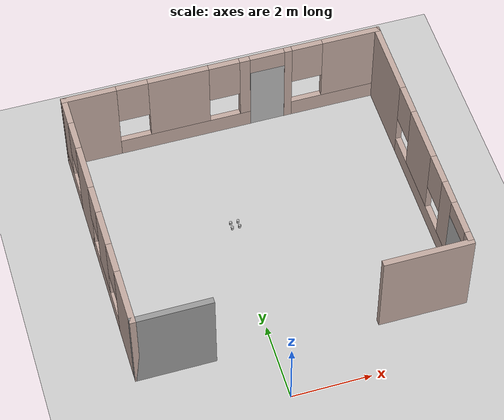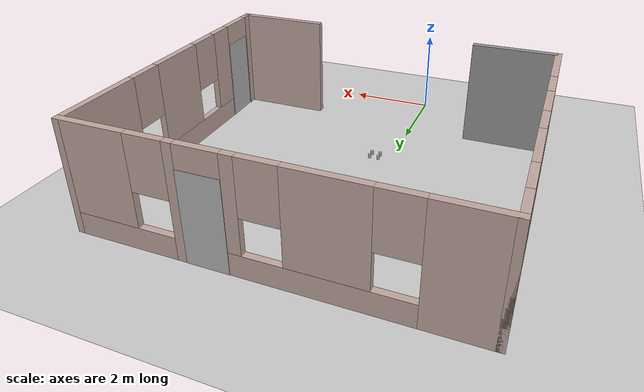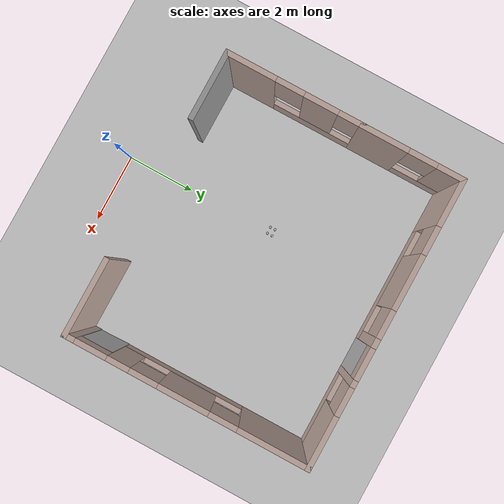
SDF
<sdf version="1.6">
 <world name="default">
  <light name="sun" type="directional">
   <pose>0 0 10 0 -0 0</pose>
   <diffuse>0.8 0.8 0.8 1</diffuse>
   <specular>0.2 0.2 0.2 1</specular>
   <attenuation>
    <range>1000</range>
    <constant>0.9</constant>
    <linear>0.01</linear>
    <quadratic>0.001</quadratic>
   </attenuation>
   <direction>-0.5 0.1 -0.9</direction>
  </light>
  <model name="ground_plane">
   <static>1</static>
   <link name="link">
    <collision name="collision">
     <geometry><plane><normal>0 0 1</normal><size>100 100</size></plane></geometry>
     <surface><friction><ode><mu>100</mu><mu2>50</mu2></ode></friction></surface>
    </collision>
    <visual name="visual">
     <cast_shadows>0</cast_shadows>
     <geometry><plane><normal>0 0 1</normal><size>100 100</size></plane></geometry>
     <material>
      <script><uri>file://media/materials/scripts/gazebo.material</uri><name>Gazebo/Grey</name></script>
     </material>
    </visual>
   </link>
  </model>
  <gravity>0 0 -9.8</gravity>
  <magnetic_field>6e-06 2.3e-05 -4.2e-05</magnetic_field>
  <atmosphere type="adiabatic"/>
  <physics name="default_physics" default="0" type="ode">
   <max_step_size>0.001</max_step_size>
   <real_time_factor>1</real_time_factor>
   <real_time_update_rate>1000</real_time_update_rate>
  </physics>
  <scene><ambient>0.4 0.4 0.4 1</ambient><background>0.7 0.7 0.7 1</background><shadows>1</shadows></scene>
  <audio><device>default</device></audio>
  <spherical_coordinates>
   <surface_model>EARTH_WGS84</surface_model>
   <latitude_deg>0</latitude_deg>
   <longitude_deg>0</longitude_deg>
   <elevation>0</elevation>
   <heading_deg>0</heading_deg>
  </spherical_coordinates>
  <model name="simpleWorld">
   <pose>0.74215 4.80433 0 0 -0 0</pose>
   <link name="Wall_10">
    <collision name="Wall_10_Collision">
     <geometry><box><size>2 0.15 2.5</size></box></geometry>
     <pose>0 0 1.25 0 -0 0</pose>
    </collision>
    <visual name="Wall_10_Visual">
     <pose>0 0 1.25 0 -0 0</pose>
     <geometry><box><size>2 0.15 2.5</size></box></geometry>
     <material>
      <script><uri>file://media/materials/scripts/gazebo.material</uri><name>Gazebo/Grey</name></script>
      <ambient>1 1 1 1</ambient>
     </material>
     <meta><layer>0</layer></meta>
    </visual>
    <pose>-3.125 -3.275 0 0 -0 0</pose>
   </link>
   <link name="Wall_3">
    <pose>-4.05 -1.35 0 0 -0 1.5708</pose>
    <visual name="Wall_3_Visual_0">
     <pose>-1.26176 0 1.25 0 -0 0</pose>
     <geometry><box><size>1.47648 0.15 2.5</size></box></geometry>
     <material>
      <script><uri>file://media/materials/scripts/gazebo.material</uri><name>Gazebo/Grey</name></script>
      <ambient>0.760784 0.662745 0.627451 1</ambient>
     </material>
     <meta><layer>0</layer></meta>
    </visual>
    <collision name="Wall_3_Collision_0">
     <geometry><box><size>1.47648 0.15 2.5</size></box></geometry>
     <pose>-1.26176 0 1.25 0 -0 0</pose>
    </collision>
    <visual name="Wall_3_Visual_1">
     <pose>0.738238 0 0.25 0 -0 0</pose>
     <geometry><box><size>2.52352 0.15 0.5</size></box></geometry>
     <material>
      <script><uri>file://media/materials/scripts/gazebo.material</uri><name>Gazebo/Grey</name></script>
      <ambient>0.760784 0.662745 0.627451 1</ambient>
     </material>
     <meta><layer>0</layer></meta>
    </visual>
    <collision name="Wall_3_Collision_1">
     <geometry><box><size>2.52352 0.15 0.5</size></box></geometry>
     <pose>0.738238 0 0.25 0 -0 0</pose>
    </collision>
    <visual name="Wall_3_Visual_2">
     <pose>0.759725 0 1.5 0 -0 0</pose>
     <geometry><box><size>0.966496 0.15 2</size></box></geometry>
     <material>
      <script><uri>file://media/materials/scripts/gazebo.material</uri><name>Gazebo/Grey</name></script>
      <ambient>0.760784 0.662745 0.627451 1</ambient>
     </material>
     <meta><layer>0</layer></meta>
    </visual>
    <collision name="Wall_3_Collision_2">
     <geometry><box><size>0.966496 0.15 2</size></box></geometry>
     <pose>0.759725 0 1.5 0 -0 0</pose>
    </collision>
    <visual name="Wall_3_Visual_3">
     <pose>0.759725 0 1.5 0 -0 0</pose>
     <geometry><box><size>0.966496 0.15 2</size></box></geometry>
     <material>
      <script><uri>file://media/materials/scripts/gazebo.material</uri><name>Gazebo/Grey</name></script>
      <ambient>0.760784 0.662745 0.627451 1</ambient>
     </material>
     <meta><layer>0</layer></meta>
    </visual>
    <collision name="Wall_3_Collision_3">
     <geometry><box><size>0.966496 0.15 2</size></box></geometry>
     <pose>0.759725 0 1.5 0 -0 0</pose>
    </collision>
    <visual name="Wall_3_Visual_4">
     <pose>-0.123523 0 1.9 0 -0 0</pose>
     <geometry><box><size>0.8 0.15 1.2</size></box></geometry>
     <material>
      <script><uri>file://media/materials/scripts/gazebo.material</uri><name>Gazebo/Grey</name></script>
      <ambient>0.760784 0.662745 0.627451 1</ambient>
     </material>
     <meta><layer>0</layer></meta>
    </visual>
    <collision name="Wall_3_Collision_4">
     <geometry><box><size>0.8 0.15 1.2</size></box></geometry>
     <pose>-0.123523 0 1.9 0 -0 0</pose>
    </collision>
    <visual name="Wall_3_Visual_5">
     <pose>1.62149 0 1.9 0 -0 0</pose>
     <geometry><box><size>0.757027 0.15 1.2</size></box></geometry>
     <material>
      <script><uri>file://media/materials/scripts/gazebo.material</uri><name>Gazebo/Grey</name></script>
      <ambient>0.760784 0.662745 0.627451 1</ambient>
     </material>
     <meta><layer>0</layer></meta>
    </visual>
    <collision name="Wall_3_Collision_5">
     <geometry><box><size>0.757027 0.15 1.2</size></box></geometry>
     <pose>1.62149 0 1.9 0 -0 0</pose>
    </collision>
    <visual name="Wall_3_Visual_6">
     <pose>1.62149 0 1.9 0 -0 0</pose>
     <geometry><box><size>0.757027 0.15 1.2</size></box></geometry>
     <material>
      <script><uri>file://media/materials/scripts/gazebo.material</uri><name>Gazebo/Grey</name></script>
      <ambient>0.760784 0.662745 0.627451 1</ambient>
     </material>
     <meta><layer>0</layer></meta>
    </visual>
    <collision name="Wall_3_Collision_6">
     <geometry><box><size>0.757027 0.15 1.2</size></box></geometry>
     <pose>1.62149 0 1.9 0 -0 0</pose>
    </collision>
   </link>
   <link name="Wall_5">
    <pose>-4.05 2 0 0 -0 1.5708</pose>
    <visual name="Wall_5_Visual_0">
     <pose>-0.80658 0 1.25 0 -0 0</pose>
     <geometry><box><size>1.38684 0.15 2.5</size></box></geometry>
     <material>
      <script><uri>file://media/materials/scripts/gazebo.material</uri><name>Gazebo/Grey</name></script>
      <ambient>0.760784 0.662745 0.627451 1</ambient>
     </material>
     <meta><layer>0</layer></meta>
    </visual>
    <collision name="Wall_5_Collision_0">
     <geometry><box><size>1.38684 0.15 2.5</size></box></geometry>
     <pose>-0.80658 0 1.25 0 -0 0</pose>
    </collision>
    <visual name="Wall_5_Visual_1">
     <pose>0.69342 0 0.25 0 -0 0</pose>
     <geometry><box><size>1.61316 0.15 0.5</size></box></geometry>
     <material>
      <script><uri>file://media/materials/scripts/gazebo.material</uri><name>Gazebo/Grey</name></script>
      <ambient>0.760784 0.662745 0.627451 1</ambient>
     </material>
     <meta><layer>0</layer></meta>
    </visual>
    <collision name="Wall_5_Collision_1">
     <geometry><box><size>1.61316 0.15 0.5</size></box></geometry>
     <pose>0.69342 0 0.25 0 -0 0</pose>
    </collision>
    <visual name="Wall_5_Visual_2">
     <pose>1.09342 0 1.5 0 -0 0</pose>
     <geometry><box><size>0.81316 0.15 2</size></box></geometry>
     <material>
      <script><uri>file://media/materials/scripts/gazebo.material</uri><name>Gazebo/Grey</name></script>
      <ambient>0.760784 0.662745 0.627451 1</ambient>
     </material>
     <meta><layer>0</layer></meta>
    </visual>
    <collision name="Wall_5_Collision_2">
     <geometry><box><size>0.81316 0.15 2</size></box></geometry>
     <pose>1.09342 0 1.5 0 -0 0</pose>
    </collision>
    <visual name="Wall_5_Visual_3">
     <pose>0.28684 0 1.9 0 -0 0</pose>
     <geometry><box><size>0.8 0.15 1.2</size></box></geometry>
     <material>
      <script><uri>file://media/materials/scripts/gazebo.material</uri><name>Gazebo/Grey</name></script>
      <ambient>0.760784 0.662745 0.627451 1</ambient>
     </material>
     <meta><layer>0</layer></meta>
    </visual>
    <collision name="Wall_5_Collision_3">
     <geometry><box><size>0.8 0.15 1.2</size></box></geometry>
     <pose>0.28684 0 1.9 0 -0 0</pose>
    </collision>
   </link>
   <link name="Wall_6">
    <pose>0 3.425 0 0 -0 0</pose>
    <visual name="Wall_6_Visual_0">
     <pose>-3.43049 0 1.25 0 -0 0</pose>
     <geometry><box><size>1.38903 0.15 2.5</size></box></geometry>
     <material>
      <script><uri>file://media/materials/scripts/gazebo.material</uri><name>Gazebo/Grey</name></script>
      <ambient>0.760784 0.662745 0.627451 1</ambient>
     </material>
     <meta><layer>0</layer></meta>
    </visual>
    <collision name="Wall_6_Collision_0">
     <geometry><box><size>1.38903 0.15 2.5</size></box></geometry>
     <pose>-3.43049 0 1.25 0 -0 0</pose>
    </collision>
    <visual name="Wall_6_Visual_1">
     <pose>1.69425 0 1.25 0 -0 0</pose>
     <geometry><box><size>0.199404 0.15 2.5</size></box></geometry>
     <material>
      <script><uri>file://media/materials/scripts/gazebo.material</uri><name>Gazebo/Grey</name></script>
      <ambient>0.760784 0.662745 0.627451 1</ambient>
     </material>
     <meta><layer>0</layer></meta>
    </visual>
    <collision name="Wall_6_Collision_1">
     <geometry><box><size>0.199404 0.15 2.5</size></box></geometry>
     <pose>1.69425 0 1.25 0 -0 0</pose>
    </collision>
    <visual name="Wall_6_Visual_2">
     <pose>-1.02071 0 0.25 0 -0 0</pose>
     <geometry><box><size>3.43052 0.15 0.5</size></box></geometry>
     <material>
      <script><uri>file://media/materials/scripts/gazebo.material</uri><name>Gazebo/Grey</name></script>
      <ambient>0.760784 0.662745 0.627451 1</ambient>
     </material>
     <meta><layer>0</layer></meta>
    </visual>
    <collision name="Wall_6_Collision_2">
     <geometry><box><size>3.43052 0.15 0.5</size></box></geometry>
     <pose>-1.02071 0 0.25 0 -0 0</pose>
    </collision>
    <visual name="Wall_6_Visual_3">
     <pose>2.95948 0 0.25 0 -0 0</pose>
     <geometry><box><size>2.33105 0.15 0.5</size></box></geometry>
     <material>
      <script><uri>file://media/materials/scripts/gazebo.material</uri><name>Gazebo/Grey</name></script>
      <ambient>0.760784 0.662745 0.627451 1</ambient>
     </material>
     <meta><layer>0</layer></meta>
    </visual>
    <collision name="Wall_6_Collision_3">
     <geometry><box><size>2.33105 0.15 0.5</size></box></geometry>
     <pose>2.95948 0 0.25 0 -0 0</pose>
    </collision>
    <visual name="Wall_6_Visual_4">
     <pose>-1.15539 0 1.5 0 -0 0</pose>
     <geometry><box><size>1.56116 0.15 2</size></box></geometry>
     <material>
      <script><uri>file://media/materials/scripts/gazebo.material</uri><name>Gazebo/Grey</name></script>
      <ambient>0.760784 0.662745 0.627451 1</ambient>
     </material>
     <meta><layer>0</layer></meta>
    </visual>
    <collision name="Wall_6_Collision_4">
     <geometry><box><size>1.56116 0.15 2</size></box></geometry>
     <pose>-1.15539 0 1.5 0 -0 0</pose>
    </collision>
    <visual name="Wall_6_Visual_5">
     <pose>0.559867 0 1.5 0 -0 0</pose>
     <geometry><box><size>0.269364 0.15 2</size></box></geometry>
     <material>
      <script><uri>file://media/materials/scripts/gazebo.material</uri><name>Gazebo/Grey</name></script>
      <ambient>0.760784 0.662745 0.627451 1</ambient>
     </material>
     <meta><layer>0</layer></meta>
    </visual>
    <collision name="Wall_6_Collision_5">
     <geometry><box><size>0.269364 0.15 2</size></box></geometry>
     <pose>0.559867 0 1.5 0 -0 0</pose>
    </collision>
    <visual name="Wall_6_Visual_6">
     <pose>0.559867 0 1.5 0 -0 0</pose>
     <geometry><box><size>0.269364 0.15 2</size></box></geometry>
     <material>
      <script><uri>file://media/materials/scripts/gazebo.material</uri><name>Gazebo/Grey</name></script>
      <ambient>0.760784 0.662745 0.627451 1</ambient>
     </material>
     <meta><layer>0</layer></meta>
    </visual>
    <collision name="Wall_6_Collision_6">
     <geometry><box><size>0.269364 0.15 2</size></box></geometry>
     <pose>0.559867 0 1.5 0 -0 0</pose>
    </collision>
    <visual name="Wall_6_Visual_7">
     <pose>3.35948 0 1.5 0 -0 0</pose>
     <geometry><box><size>1.53105 0.15 2</size></box></geometry>
     <material>
      <script><uri>file://media/materials/scripts/gazebo.material</uri><name>Gazebo/Grey</name></script>
      <ambient>0.760784 0.662745 0.627451 1</ambient>
     </material>
     <meta><layer>0</layer></meta>
    </visual>
    <collision name="Wall_6_Collision_7">
     <geometry><box><size>1.53105 0.15 2</size></box></geometry>
     <pose>3.35948 0 1.5 0 -0 0</pose>
    </collision>
    <visual name="Wall_6_Visual_8">
     <pose>-2.33597 0 1.9 0 -0 0</pose>
     <geometry><box><size>0.8 0.15 1.2</size></box></geometry>
     <material>
      <script><uri>file://media/materials/scripts/gazebo.material</uri><name>Gazebo/Grey</name></script>
      <ambient>0.760784 0.662745 0.627451 1</ambient>
     </material>
     <meta><layer>0</layer></meta>
    </visual>
    <collision name="Wall_6_Collision_8">
     <geometry><box><size>0.8 0.15 1.2</size></box></geometry>
     <pose>-2.33597 0 1.9 0 -0 0</pose>
    </collision>
    <visual name="Wall_6_Visual_9">
     <pose>2.19395 0 1.9 0 -0 0</pose>
     <geometry><box><size>0.8 0.15 1.2</size></box></geometry>
     <material>
      <script><uri>file://media/materials/scripts/gazebo.material</uri><name>Gazebo/Grey</name></script>
      <ambient>0.760784 0.662745 0.627451 1</ambient>
     </material>
     <meta><layer>0</layer></meta>
    </visual>
    <collision name="Wall_6_Collision_9">
     <geometry><box><size>0.8 0.15 1.2</size></box></geometry>
     <pose>2.19395 0 1.9 0 -0 0</pose>
    </collision>
    <visual name="Wall_6_Visual_10">
     <pose>0.025185 0 1.9 0 -0 0</pose>
     <geometry><box><size>0.8 0.15 1.2</size></box></geometry>
     <material>
      <script><uri>file://media/materials/scripts/gazebo.material</uri><name>Gazebo/Grey</name></script>
      <ambient>0.760784 0.662745 0.627451 1</ambient>
     </material>
     <meta><layer>0</layer></meta>
    </visual>
    <collision name="Wall_6_Collision_10">
     <geometry><box><size>0.8 0.15 1.2</size></box></geometry>
     <pose>0.025185 0 1.9 0 -0 0</pose>
    </collision>
    <visual name="Wall_6_Visual_11">
     <pose>1.14455 0 2.25 0 -0 0</pose>
     <geometry><box><size>0.9 0.15 0.5</size></box></geometry>
     <material>
      <script><uri>file://media/materials/scripts/gazebo.material</uri><name>Gazebo/Grey</name></script>
      <ambient>0.760784 0.662745 0.627451 1</ambient>
     </material>
     <meta><layer>0</layer></meta>
    </visual>
    <collision name="Wall_6_Collision_11">
     <geometry><box><size>0.9 0.15 0.5</size></box></geometry>
     <pose>1.14455 0 2.25 0 -0 0</pose>
    </collision>
    <visual name="Wall_6_Visual_12">
     <pose>1.14455 0 2.25 0 -0 0</pose>
     <geometry><box><size>0.9 0.15 0.5</size></box></geometry>
     <material>
      <script><uri>file://media/materials/scripts/gazebo.material</uri><name>Gazebo/Grey</name></script>
      <ambient>0.760784 0.662745 0.627451 1</ambient>
     </material>
     <meta><layer>0</layer></meta>
    </visual>
    <collision name="Wall_6_Collision_12">
     <geometry><box><size>0.9 0.15 0.5</size></box></geometry>
     <pose>1.14455 0 2.25 0 -0 0</pose>
    </collision>
   </link>
   <link name="Wall_7">
    <pose>4.05 0 0 0 -0 -1.5708</pose>
    <visual name="Wall_7_Visual_0">
     <pose>-2.46378 0 1.25 0 -0 0</pose>
     <geometry><box><size>2.07245 0.15 2.5</size></box></geometry>
     <material>
      <script><uri>file://media/materials/scripts/gazebo.material</uri><name>Gazebo/Grey</name></script>
      <ambient>0.760784 0.662745 0.627451 1</ambient>
     </material>
     <meta><layer>0</layer></meta>
    </visual>
    <collision name="Wall_7_Collision_0">
     <geometry><box><size>2.07245 0.15 2.5</size></box></geometry>
     <pose>-2.46378 0 1.25 0 -0 0</pose>
    </collision>
    <visual name="Wall_7_Visual_1">
     <pose>3.32391 0 1.25 0 -0 0</pose>
     <geometry><box><size>0.352172 0.15 2.5</size></box></geometry>
     <material>
      <script><uri>file://media/materials/scripts/gazebo.material</uri><name>Gazebo/Grey</name></script>
      <ambient>0.760784 0.662745 0.627451 1</ambient>
     </material>
     <meta><layer>0</layer></meta>
    </visual>
    <collision name="Wall_7_Collision_1">
     <geometry><box><size>0.352172 0.15 2.5</size></box></geometry>
     <pose>3.32391 0 1.25 0 -0 0</pose>
    </collision>
    <visual name="Wall_7_Visual_2">
     <pose>0.410136 0 0.25 0 -0 0</pose>
     <geometry><box><size>3.67538 0.15 0.5</size></box></geometry>
     <material>
      <script><uri>file://media/materials/scripts/gazebo.material</uri><name>Gazebo/Grey</name></script>
      <ambient>0.760784 0.662745 0.627451 1</ambient>
     </material>
     <meta><layer>0</layer></meta>
    </visual>
    <collision name="Wall_7_Collision_2">
     <geometry><box><size>3.67538 0.15 0.5</size></box></geometry>
     <pose>0.410136 0 0.25 0 -0 0</pose>
    </collision>
    <visual name="Wall_7_Visual_3">
     <pose>0.091809 0 1.5 0 -0 0</pose>
     <geometry><box><size>1.43873 0.15 2</size></box></geometry>
     <material>
      <script><uri>file://media/materials/scripts/gazebo.material</uri><name>Gazebo/Grey</name></script>
      <ambient>0.760784 0.662745 0.627451 1</ambient>
     </material>
     <meta><layer>0</layer></meta>
    </visual>
    <collision name="Wall_7_Collision_3">
     <geometry><box><size>1.43873 0.15 2</size></box></geometry>
     <pose>0.091809 0 1.5 0 -0 0</pose>
    </collision>
    <visual name="Wall_7_Visual_4">
     <pose>1.9295 0 1.5 0 -0 0</pose>
     <geometry><box><size>0.636655 0.15 2</size></box></geometry>
     <material>
      <script><uri>file://media/materials/scripts/gazebo.material</uri><name>Gazebo/Grey</name></script>
      <ambient>0.760784 0.662745 0.627451 1</ambient>
     </material>
     <meta><layer>0</layer></meta>
    </visual>
    <collision name="Wall_7_Collision_4">
     <geometry><box><size>0.636655 0.15 2</size></box></geometry>
     <pose>1.9295 0 1.5 0 -0 0</pose>
    </collision>
    <visual name="Wall_7_Visual_5">
     <pose>-1.02755 0 1.9 0 -0 0</pose>
     <geometry><box><size>0.8 0.15 1.2</size></box></geometry>
     <material>
      <script><uri>file://media/materials/scripts/gazebo.material</uri><name>Gazebo/Grey</name></script>
      <ambient>0.760784 0.662745 0.627451 1</ambient>
     </material>
     <meta><layer>0</layer></meta>
    </visual>
    <collision name="Wall_7_Collision_5">
     <geometry><box><size>0.8 0.15 1.2</size></box></geometry>
     <pose>-1.02755 0 1.9 0 -0 0</pose>
    </collision>
    <visual name="Wall_7_Visual_6">
     <pose>1.21117 0 1.9 0 -0 0</pose>
     <geometry><box><size>0.8 0.15 1.2</size></box></geometry>
     <material>
      <script><uri>file://media/materials/scripts/gazebo.material</uri><name>Gazebo/Grey</name></script>
      <ambient>0.760784 0.662745 0.627451 1</ambient>
     </material>
     <meta><layer>0</layer></meta>
    </visual>
    <collision name="Wall_7_Collision_6">
     <geometry><box><size>0.8 0.15 1.2</size></box></geometry>
     <pose>1.21117 0 1.9 0 -0 0</pose>
    </collision>
    <visual name="Wall_7_Visual_7">
     <pose>2.69783 0 2.25 0 -0 0</pose>
     <geometry><box><size>0.9 0.15 0.5</size></box></geometry>
     <material>
      <script><uri>file://media/materials/scripts/gazebo.material</uri><name>Gazebo/Grey</name></script>
      <ambient>0.760784 0.662745 0.627451 1</ambient>
     </material>
     <meta><layer>0</layer></meta>
    </visual>
    <collision name="Wall_7_Collision_7">
     <geometry><box><size>0.9 0.15 0.5</size></box></geometry>
     <pose>2.69783 0 2.25 0 -0 0</pose>
    </collision>
   </link>
   <link name="Wall_8">
    <collision name="Wall_8_Collision">
     <geometry><box><size>2.25 0.15 2.5</size></box></geometry>
     <pose>0 0 1.25 0 -0 0</pose>
    </collision>
    <visual name="Wall_8_Visual">
     <pose>0 0 1.25 0 -0 0</pose>
     <geometry><box><size>2.25 0.15 2.5</size></box></geometry>
     <material>
      <script><uri>file://media/materials/scripts/gazebo.material</uri><name>Gazebo/Grey</name></script>
      <ambient>0.760784 0.662745 0.627451 1</ambient>
     </material>
     <meta><layer>0</layer></meta>
    </visual>
    <pose>3 -3.425 0 0 -0 3.14159</pose>
   </link>
   <static>1</static>
  </model>
  <model name="door">
   <link name="link_0">
    <visual name="visual">
     <pose>0 0 1 0 -0 0</pose>
     <geometry><box><size>0.9 0.15 2</size></box></geometry>
     <material>
      <script>
       <uri>model://door/materials/scripts</uri>
       <uri>model://door/materials/textures</uri>
       <name>door</name>
      </script>
     </material>
    </visual>
    <collision name="collision">
     <pose>0 0 1 0 -0 0</pose>
     <geometry><box><size>0.9 0.15 2</size></box></geometry>
    </collision>
   </link>
   <static>1</static>
   <pose>4.79764 2.09948 0 0 -0 1.6</pose>
  </model>
  <model name="door_0">
   <link name="link_0">
    <visual name="visual">
     <pose>0 0 1 0 -0 0</pose>
     <geometry><box><size>0.9 0.15 2</size></box></geometry>
     <material>
      <script>
       <uri>model://door/materials/scripts</uri>
       <uri>model://door/materials/textures</uri>
       <name>door</name>
      </script>
     </material>
    </visual>
    <collision name="collision">
     <pose>0 0 1 0 -0 0</pose>
     <geometry><box><size>0.9 0.15 2</size></box></geometry>
    </collision>
   </link>
   <static>1</static>
   <pose>1.89145 8.23404 0 0 -0 0</pose>
  </model>
  <model name="cans_1">
   <link name="link">
    <inertial>
     <mass>0.25</mass>
     <inertia>
      <ixx>0.00022647</ixx>
      <ixy>0</ixy>
      <ixz>0</ixz>
      <iyy>0.00022647</iyy>
      <iyz>0</iyz>
      <izz>0.0001015</izz>
     </inertia>
     <pose>0 0 0.2 0 -0 0</pose>
    </inertial>
    <visual name="ModelPreview_8::link::visual_1">
     <geometry><mesh><uri>model://cans/meshes/cylindermesh.dae</uri><scale>1 1 1</scale></mesh></geometry>
     <material>
      <script>
       <uri>model://cans/materials/scripts</uri>
       <uri>model://cans/materials/textures</uri>
       <name>cylinder</name>
      </script>
     </material>
    </visual>
    <visual name="visual">
     <geometry><mesh><uri>model://cans/meshes/cylindermesh.dae</uri><scale>1 1 1</scale></mesh></geometry>
     <material>
      <script>
       <uri>model://cans/materials/scripts</uri>
       <uri>model://cans/materials/textures</uri>
       <name>cylinder</name>
      </script>
     </material>
    </visual>
    <collision name="collision">
     <geometry><mesh><uri>model://cans/meshes/cylindermesh.dae</uri><scale>1 1 1</scale></mesh></geometry>
     <surface>
      <friction>
       <ode><mu>30</mu><mu2>30</mu2><fdir1>0 0 0</fdir1><slip1>0</slip1><slip2>0</slip2></ode>
       <torsional>
        <coefficient>1</coefficient>
        <patch_radius>0</patch_radius>
        <surface_radius>0</surface_radius>
        <use_patch_radius>1</use_patch_radius>
        <ode><slip>0</slip></ode>
       </torsional>
      </friction>
      <bounce><restitution_coefficient>0</restitution_coefficient><threshold>1e+06</threshold></bounce>
      <contact>
       <collide_without_contact>0</collide_without_contact>
       <collide_without_contact_bitmask>1</collide_without_contact_bitmask>
       <collide_bitmask>1</collide_bitmask>
       <ode>
        <soft_cfm>0</soft_cfm>
        <soft_erp>0.2</soft_erp>
        <kp>1e+06</kp>
        <kd>100</kd>
        <max_vel>1</max_vel>
        <min_depth>0.002</min_depth>
       </ode>
       <bullet>
        <split_impulse>1</split_impulse>
        <split_impulse_penetration_threshold>-0.01</split_impulse_penetration_threshold>
        <soft_cfm>0</soft_cfm>
        <soft_erp>0.2</soft_erp>
        <kp>1e+13</kp>
        <kd>1</kd>
       </bullet>
      </contact>
     </surface>
    </collision>
   </link>
   <static>0</static>
   <pose>0.080869 4.66822 0.812999 3.14158 -1.1e-05 0.007085</pose>
  </model>
  <model name="cans_2">
   <link name="link">
    <inertial>
     <mass>0.25</mass>
     <inertia>
      <ixx>0.00022647</ixx>
      <ixy>0</ixy>
      <ixz>0</ixz>
      <iyy>0.00022647</iyy>
      <iyz>0</iyz>
      <izz>0.0001015</izz>
     </inertia>
     <pose>0 0 0.2 0 -0 0</pose>
    </inertial>
    <visual name="ModelPreview_8::link::visual_1">
     <geometry><mesh><uri>model://cans/meshes/cylindermesh.dae</uri><scale>1 1 1</scale></mesh></geometry>
     <material>
      <script>
       <uri>model://cans/materials/scripts</uri>
       <uri>model://cans/materials/textures</uri>
       <name>cylinder</name>
      </script>
     </material>
    </visual>
    <visual name="visual">
     <geometry><mesh><uri>model://cans/meshes/cylindermesh.dae</uri><scale>1 1 1</scale></mesh></geometry>
     <material>
      <script>
       <uri>model://cans/materials/scripts</uri>
       <uri>model://cans/materials/textures</uri>
       <name>cylinder</name>
      </script>
     </material>
    </visual>
    <collision name="collision">
     <geometry><mesh><uri>model://cans/meshes/cylindermesh.dae</uri><scale>1 1 1</scale></mesh></geometry>
     <surface>
      <friction>
       <ode><mu>30</mu><mu2>30</mu2><fdir1>0 0 0</fdir1><slip1>0</slip1><slip2>0</slip2></ode>
       <torsional>
        <coefficient>1</coefficient>
        <patch_radius>0</patch_radius>
        <surface_radius>0</surface_radius>
        <use_patch_radius>1</use_patch_radius>
        <ode><slip>0</slip></ode>
       </torsional>
      </friction>
      <bounce><restitution_coefficient>0</restitution_coefficient><threshold>1e+06</threshold></bounce>
      <contact>
       <collide_without_contact>0</collide_without_contact>
       <collide_without_contact_bitmask>1</collide_without_contact_bitmask>
       <collide_bitmask>1</collide_bitmask>
       <ode>
        <soft_cfm>0</soft_cfm>
        <soft_erp>0.2</soft_erp>
        <kp>1e+06</kp>
        <kd>100</kd>
        <max_vel>1</max_vel>
        <min_depth>0.002</min_depth>
       </ode>
       <bullet>
        <split_impulse>1</split_impulse>
        <split_impulse_penetration_threshold>-0.01</split_impulse_penetration_threshold>
        <soft_cfm>0</soft_cfm>
        <soft_erp>0.2</soft_erp>
        <kp>1e+13</kp>
        <kd>1</kd>
       </bullet>
      </contact>
     </surface>
    </collision>
   </link>
   <static>0</static>
   <pose>-0.104812 4.51532 0.813799 0.018007 -0.014776 0.024914</pose>
  </model>
  <model name="cans_3">
   <link name="link">
    <inertial>
     <mass>0.25</mass>
     <inertia>
      <ixx>0.00022647</ixx>
      <ixy>0</ixy>
      <ixz>0</ixz>
      <iyy>0.00022647</iyy>
      <iyz>0</iyz>
      <izz>0.0001015</izz>
     </inertia>
     <pose>0 0 0.2 0 -0 0</pose>
    </inertial>
    <visual name="ModelPreview_8::link::visual_1">
     <geometry><mesh><uri>model://cans/meshes/cylindermesh.dae</uri><scale>1 1 1</scale></mesh></geometry>
     <material>
      <script>
       <uri>model://cans/materials/scripts</uri>
       <uri>model://cans/materials/textures</uri>
       <name>cylinder</name>
      </script>
     </material>
    </visual>
    <visual name="visual">
     <geometry><mesh><uri>model://cans/meshes/cylindermesh.dae</uri><scale>1 1 1</scale></mesh></geometry>
     <material>
      <script>
       <uri>model://cans/materials/scripts</uri>
       <uri>model://cans/materials/textures</uri>
       <name>cylinder</name>
      </script>
     </material>
    </visual>
    <collision name="collision">
     <geometry><mesh><uri>model://cans/meshes/cylindermesh.dae</uri><scale>1 1 1</scale></mesh></geometry>
     <surface>
      <friction>
       <ode><mu>30</mu><mu2>30</mu2><fdir1>0 0 0</fdir1><slip1>0</slip1><slip2>0</slip2></ode>
       <torsional>
        <coefficient>1</coefficient>
        <patch_radius>0</patch_radius>
        <surface_radius>0</surface_radius>
        <use_patch_radius>1</use_patch_radius>
        <ode><slip>0</slip></ode>
       </torsional>
      </friction>
      <bounce><restitution_coefficient>0</restitution_coefficient><threshold>1e+06</threshold></bounce>
      <contact>
       <collide_without_contact>0</collide_without_contact>
       <collide_without_contact_bitmask>1</collide_without_contact_bitmask>
       <collide_bitmask>1</collide_bitmask>
       <ode>
        <soft_cfm>0</soft_cfm>
        <soft_erp>0.2</soft_erp>
        <kp>1e+06</kp>
        <kd>100</kd>
        <max_vel>1</max_vel>
        <min_depth>0.002</min_depth>
       </ode>
       <bullet>
        <split_impulse>1</split_impulse>
        <split_impulse_penetration_threshold>-0.01</split_impulse_penetration_threshold>
        <soft_cfm>0</soft_cfm>
        <soft_erp>0.2</soft_erp>
        <kp>1e+13</kp>
        <kd>1</kd>
       </bullet>
      </contact>
     </surface>
    </collision>
   </link>
   <static>0</static>
   <pose>0.079247 4.51947 0.812999 3.14158 -1.1e-05 -1.53863</pose>
  </model>
  <model name="cans_6">
   <link name="link">
    <inertial>
     <mass>0.25</mass>
     <inertia>
      <ixx>0.00022647</ixx>
      <ixy>0</ixy>
      <ixz>0</ixz>
      <iyy>0.00022647</iyy>
      <iyz>0</iyz>
      <izz>0.0001015</izz>
     </inertia>
     <pose>0 0 0.2 0 -0 0</pose>
    </inertial>
    <visual name="ModelPreview_8::link::visual_1">
     <geometry><mesh><uri>model://cans/meshes/cylindermesh.dae</uri><scale>1 1 1</scale></mesh></geometry>
     <material>
      <script>
       <uri>model://cans/materials/scripts</uri>
       <uri>model://cans/materials/textures</uri>
       <name>cylinder</name>
      </script>
     </material>
    </visual>
    <visual name="visual">
     <geometry><mesh><uri>model://cans/meshes/cylindermesh.dae</uri><scale>1 1 1</scale></mesh></geometry>
     <material>
      <script>
       <uri>model://cans/materials/scripts</uri>
       <uri>model://cans/materials/textures</uri>
       <name>cylinder</name>
      </script>
     </material>
    </visual>
    <collision name="collision">
     <geometry><mesh><uri>model://cans/meshes/cylindermesh.dae</uri><scale>1 1 1</scale></mesh></geometry>
     <surface>
      <friction>
       <ode><mu>30</mu><mu2>30</mu2><fdir1>0 0 0</fdir1><slip1>0</slip1><slip2>0</slip2></ode>
       <torsional>
        <coefficient>1</coefficient>
        <patch_radius>0</patch_radius>
        <surface_radius>0</surface_radius>
        <use_patch_radius>1</use_patch_radius>
        <ode><slip>0</slip></ode>
       </torsional>
      </friction>
      <bounce><restitution_coefficient>0</restitution_coefficient><threshold>1e+06</threshold></bounce>
      <contact>
       <collide_without_contact>0</collide_without_contact>
       <collide_without_contact_bitmask>1</collide_without_contact_bitmask>
       <collide_bitmask>1</collide_bitmask>
       <ode>
        <soft_cfm>0</soft_cfm>
        <soft_erp>0.2</soft_erp>
        <kp>1e+06</kp>
        <kd>100</kd>
        <max_vel>1</max_vel>
        <min_depth>0.002</min_depth>
       </ode>
       <bullet>
        <split_impulse>1</split_impulse>
        <split_impulse_penetration_threshold>-0.01</split_impulse_penetration_threshold>
        <soft_cfm>0</soft_cfm>
        <soft_erp>0.2</soft_erp>
        <kp>1e+13</kp>
        <kd>1</kd>
       </bullet>
      </contact>
     </surface>
    </collision>
   </link>
   <static>0</static>
   <pose>-0.107551 4.66247 0.812999 3.14158 -1.1e-05 -1.59855</pose>
  </model>
 </world>
</sdf>
